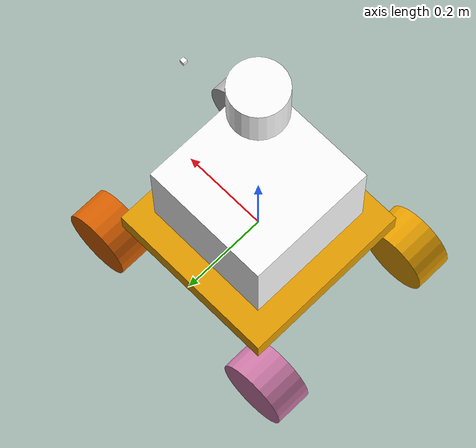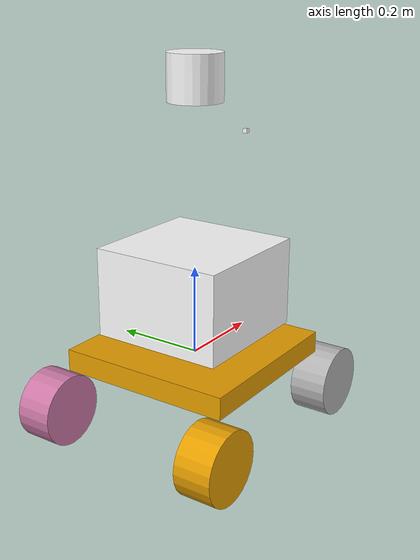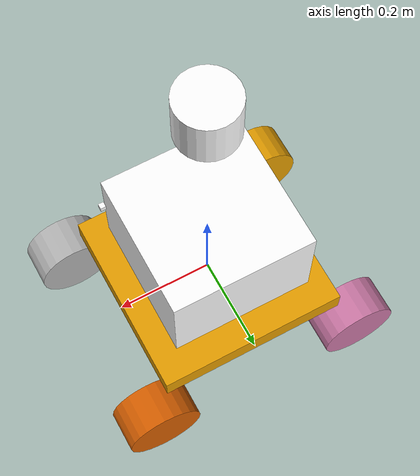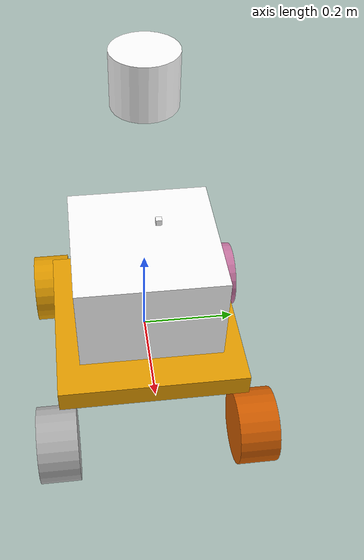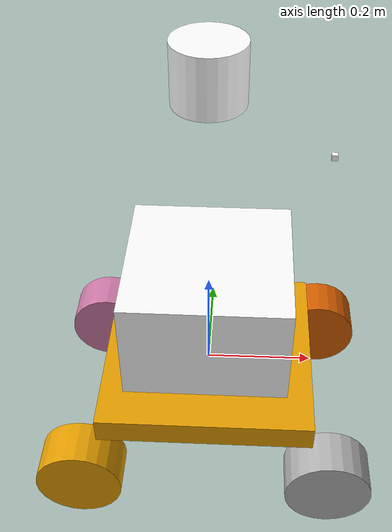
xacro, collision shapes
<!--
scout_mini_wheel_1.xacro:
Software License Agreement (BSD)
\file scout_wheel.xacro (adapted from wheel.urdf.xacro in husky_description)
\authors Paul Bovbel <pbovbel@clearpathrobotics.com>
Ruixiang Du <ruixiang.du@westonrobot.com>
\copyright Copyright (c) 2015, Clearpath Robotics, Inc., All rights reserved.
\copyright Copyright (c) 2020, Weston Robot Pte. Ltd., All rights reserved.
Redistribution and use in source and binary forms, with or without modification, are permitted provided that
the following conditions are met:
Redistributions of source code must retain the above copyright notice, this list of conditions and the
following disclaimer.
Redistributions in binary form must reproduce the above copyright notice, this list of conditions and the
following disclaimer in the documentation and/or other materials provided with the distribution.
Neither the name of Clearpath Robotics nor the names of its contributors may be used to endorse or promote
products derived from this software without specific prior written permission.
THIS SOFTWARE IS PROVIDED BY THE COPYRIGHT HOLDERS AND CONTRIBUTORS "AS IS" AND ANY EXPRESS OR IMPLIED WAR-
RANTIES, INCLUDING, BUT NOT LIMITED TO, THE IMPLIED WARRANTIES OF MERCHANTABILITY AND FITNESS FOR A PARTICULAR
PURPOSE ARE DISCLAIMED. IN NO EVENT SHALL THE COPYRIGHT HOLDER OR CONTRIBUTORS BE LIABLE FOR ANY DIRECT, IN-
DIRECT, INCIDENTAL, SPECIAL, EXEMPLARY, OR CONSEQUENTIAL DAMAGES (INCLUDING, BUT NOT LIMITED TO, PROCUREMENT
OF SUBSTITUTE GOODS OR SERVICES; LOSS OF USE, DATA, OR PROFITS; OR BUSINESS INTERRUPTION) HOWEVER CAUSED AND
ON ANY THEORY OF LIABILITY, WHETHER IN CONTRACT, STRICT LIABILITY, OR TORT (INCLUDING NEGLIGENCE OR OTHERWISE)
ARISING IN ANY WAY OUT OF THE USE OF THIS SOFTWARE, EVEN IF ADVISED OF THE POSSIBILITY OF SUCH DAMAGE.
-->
<?xml version="1.0"?>

<robot name="scout_mini"
    xmlns:xacro="http://ros.org/wiki/xacro">

    <xacro:arg name="ns" default="/" />
    <xacro:arg name="urdf_extras" default="empty.urdf" />
    <xacro:arg name="enable_ros_control" default="false" />
    <xacro:arg name="use_skid_steer_plugin" default="true" />
    <xacro:arg name="robot_description_param" default="robot_description" />
    <xacro:arg name="frame_prefix" default="" />
    <xacro:arg name="sensor_ns" default="/" />
    <xacro:arg name="wheel_contact_mu2" default="0.35" />
    <xacro:arg name="wheel_contact_slip2" default="0.1" />
    <xacro:arg name="skid_steer_torque" default="1000" />

    <xacro:include filename="$(find scout_description)/urdf/scout_mini_wheel_1.xacro" />
    <xacro:include filename="$(find scout_description)/urdf/scout_mini_wheel_2.xacro" />
    <xacro:include filename="$(find scout_description)/urdf/scout_mini_wheel_3.xacro" />
    <xacro:include filename="$(find scout_description)/urdf/scout_mini_wheel_4.xacro" />

    <!-- Variables -->
    <xacro:property name="M_PI" value="3.14159"/>

    <!-- Vehicle Geometries -->
    <xacro:property name="base_x_size" value="0.6200000" />
    <xacro:property name="base_y_size" value="0.585000" />
    <xacro:property name="base_z_size" value="0.235000" />

    <xacro:property name="wheelbase" value="0.463951"/>
    <xacro:property name="track" value="0.416503"/>
    <xacro:property name="wheel_vertical_offset" value="-0.100998" />

    <xacro:property name="wheel_diameter" value="0.16" />
    <xacro:property name="wheel_width" value="0.084" />

    <xacro:property name="wheel_length" value="0.8e-01" />
    <xacro:property name="wheel_radius" value="1.600e-01" />

    <!-- Base link -->
    <link name="base_link">
        <inertial>
            <origin
                xyz="0.0 0.0 0.0"
                rpy="0 0 0" />
            <mass
                value="10" />
            <inertia ixx="0.1354" ixy="0" ixz="0"
             iyy="0.1354" iyz="0" izz="0.2667"/>
        </inertial>
        <visual>
            <origin
                    xyz="0 0 0.0"
                    rpy="1.57 0 -1.57" />
            <geometry>
                <mesh filename="package://scout_description/meshes/scout_mini_base_link2.dae" />
            </geometry>
        </visual>
        <collision>
            <origin
                    xyz="0 0 0"
                    rpy="0 0 0" />
          <geometry>
              <box size="0.4 0.4 0.05"/>
          </geometry>
        </collision>
    </link>

    <link name="box_link">
        <inertial>
            <origin
                xyz="0.0 0.0 0.0"
                rpy="0 0 0" />
            <mass
                value="5" />
            <inertia
                ixx="0.054166666667"
                ixy="0"
                ixz="0"
                iyy="0.075"
                iyz="0"
                izz="0.054166666667"/>
            </inertial>
        <visual>
            <origin
                    xyz="0.0 0.0 0.0"
                    rpy="0.0 0.0 3.14" />
            <geometry>
                <mesh filename="package://scout_description/meshes/box_link.STL" />
            </geometry>
            <material name = "red">
            <color rgba="1 1 1 1" />
            </material>
        </visual>
        <collision>
            <origin
                    xyz="0 0 0.1"
                    rpy="1.57 0 1.57" />
          <geometry>
            <box size="0.3 0.2 0.3"/>
          </geometry>
        </collision>
    </link>

    <joint name="box_joint" type="fixed">
        <origin xyz="0 0 0.055" rpy="0 0 3.14" />
        <parent link="base_link" />
        <child link="box_link" />
    </joint>

 <link name="laser_link">
        <inertial>
            <origin
                xyz="0.0 0.0 0.0"
                rpy="0 0 0" />
            <mass
                value="0.1" />
            <inertia
                ixx="0.0088463"
                ixy="2.0356E-05"
                ixz="-0.00047464"
                iyy="0.0066478"
                iyz="-6.9288E-06"
                izz="0.01219" />
        </inertial>
        <visual>
            <origin
                    xyz="0.0 0.0 0.0"
                    rpy="0.0 0.0 0.0" />
            <geometry>
                    <cylinder radius="0.01" length="0.01"/>
            </geometry>
            <material name = "red">
            <color rgba="1 1 1 1" />
            </material>
        </visual>
        <collision>
            <origin
                    xyz="0 0 0.31"
                    rpy="0 0 0" />
          <geometry>
                    <cylinder radius="0.06" length="0.1"/>
          </geometry>
        </collision>
    </link>

    <joint name="laser_joint" type="fixed">
        <origin xyz="0 0 0.30" rpy="0 0 0" />
        <parent link="base_link" />
        <child link="laser_link" />
    </joint>

 <link name="camera_link">
        <inertial>
            <origin
                xyz="0.0 0.0 0.0"
                rpy="0 0 0" />
            <mass
                value="0.1" />
            <inertia
                ixx="0.0088463"
                ixy="2.0356E-05"
                ixz="-0.00047464"
                iyy="0.0066478"
                iyz="-6.9288E-06"
                izz="0.01219" />
        </inertial>
        <visual>
            <origin
                    xyz="0.0 0.0 0.0"
                    rpy="0.0 0.0 0.0" />
            <geometry>
                    <box size="0.01 0.01 0.01"/>
            </geometry>
            <material name = "red">
            <color rgba="1 1 1 1" />
            </material>
        </visual>
        <collision>
            <origin
                    xyz="0 0 0.31"
                    rpy="0 0 0" />
          <geometry>
                    <box size="0.01 0.01 0.01"/>
          </geometry>
        </collision>
    </link>

    <joint name="camera_joint" type="fixed">
        <origin xyz="0.2 0 0.16" rpy="0 0 0" />
        <parent link="base_link" />
        <child link="camera_link" />
    </joint>

    <link name="imu_link">
        <inertial>
            <origin xyz="0.0 0.0 0.0" rpy="0 0 0" />
            <mass value="0.01" />
            <inertia
                ixx="0.000001" ixy="0" ixz="0"
                iyy="0.000001" iyz="0"
                izz="0.000001" />
        </inertial>
        <visual>
            <origin xyz="0.0 0.0 0.0" rpy="0 0 0" />
            <geometry>
                <box size="0.03 0.02 0.01"/>
            </geometry>
            <material name="imu_blue">
                <color rgba="0.1 0.2 0.8 1.0" />
            </material>
        </visual>
        <collision>
            <origin xyz="0.0 0.0 0.0" rpy="0 0 0" />
            <geometry>
                <box size="0.03 0.02 0.01"/>
            </geometry>
        </collision>
    </link>

    <joint name="imu_joint" type="fixed">
        <origin xyz="0.0 0.0 0.12" rpy="0 0 0" />
        <parent link="base_link" />
        <child link="imu_link" />
    </joint>

    <!-- For testing, hang the robot up in the air -->

    <!-- Scout wheel macros -->
    <!-- wheel labeled from 0 to 3, conter-clockwise, starting from front right wheel -->
    <!-- motor 1 and 2 (left side) are mechanically installed in a reversed direction -->
    <xacro:scout_mini_wheel_1 wheel_prefix="front_left" wheel_diameter="${wheel_diameter}" wheel_width="${wheel_width}">
        <origin xyz="${wheelbase/2} ${track/2} ${wheel_vertical_offset}" rpy="-1.57 0 0" />
    </xacro:scout_mini_wheel_1>
    <xacro:scout_mini_wheel_2 wheel_prefix="rear_left" wheel_diameter="${wheel_diameter}" wheel_width="${wheel_width}">
        <origin xyz="${-wheelbase/2} ${track/2} ${wheel_vertical_offset}" rpy="-1.57 0 0" />
    </xacro:scout_mini_wheel_2>
    <xacro:scout_mini_wheel_3 wheel_prefix="front_right" wheel_diameter="${wheel_diameter}" wheel_width="${wheel_width}">
        <origin xyz="${wheelbase/2} ${-track/2} ${wheel_vertical_offset}" rpy="1.57 0 0" />
    </xacro:scout_mini_wheel_3>
    <xacro:scout_mini_wheel_4 wheel_prefix="rear_right" wheel_diameter="${wheel_diameter}" wheel_width="${wheel_width}">
        <origin xyz="${-wheelbase/2} ${-track/2} ${wheel_vertical_offset}" rpy="1.57 0 0" />
    </xacro:scout_mini_wheel_4>

    <!-- Additional definitions -->
    <xacro:include filename="$(arg urdf_extras)" />

    <!-- Gazebo definitions  -->
    <xacro:include filename="$(find scout_description)/urdf/scout_mini.gazebo" />
</robot>

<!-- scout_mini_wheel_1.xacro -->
<robot xmlns:xacro="http://ros.org/wiki/xacro" name="scout_wheel">

  <xacro:macro name="scout_mini_wheel_1" params="wheel_prefix wheel_diameter wheel_width *joint_pose">
    <xacro:property name="wheel_radius" value="${wheel_diameter / 2}" />
            <link name="${wheel_prefix}_wheel_link">
            <inertial>
                <mass value="3" />
                <origin xyz="0 0 0" />
                <inertia
                    ixx="0.006564" ixy="0" ixz="0"
                    iyy="0.006564" iyz="0"
                    izz="0.0096"/>
              </inertial>
            <visual>
                <origin xyz="0 0 0" rpy="0 0 0" />
                <geometry>
                    <mesh filename="package://scout_description/meshes/wheel.dae" />
                </geometry>
            </visual>
            <collision>
              <origin
                xyz="0 0 0"
                rpy="0 0 0" />
              <geometry>
                  <cylinder radius="0.08" length="0.084"/>

              </geometry>
            </collision>
        </link>

        <joint name="${wheel_prefix}_wheel" type="continuous">
            <parent link="base_link"/>
            <child link="${wheel_prefix}_wheel_link"/>
            <xacro:insert_block name="joint_pose"/>
            <axis xyz="0 0 1" rpy="0 0 0" />
            <dynamics damping="0.1" friction="0.0" />
        </joint>
    </xacro:macro>

</robot>

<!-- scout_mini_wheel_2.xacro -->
<robot xmlns:xacro="http://ros.org/wiki/xacro" name="scout_wheel">

  <xacro:macro name="scout_mini_wheel_2" params="wheel_prefix wheel_diameter wheel_width *joint_pose">
    <xacro:property name="wheel_radius" value="${wheel_diameter / 2}" />
           <link name="${wheel_prefix}_wheel_link">
            <inertial>
                <mass value="3" />
                <origin xyz="0 0 0" />
                <inertia
                    ixx="0.006564" ixy="0" ixz="0"
                    iyy="0.006564" iyz="0"
                    izz="0.0096"/>
              </inertial>
            <visual>
                <origin xyz="0 0 0" rpy="0 0 0" />
                <geometry>
                    <mesh filename="package://scout_description/meshes/wheel.dae" />
                </geometry>
            </visual>
            <collision>
              <origin
                xyz="0 0 0"
                rpy="0 0 0" />
              <geometry>
                  <cylinder radius="0.08" length="0.084"/>
              </geometry>
            </collision>
        </link>

        <joint name="${wheel_prefix}_wheel" type="continuous">
            <parent link="base_link"/>
            <child link="${wheel_prefix}_wheel_link"/>
            <xacro:insert_block name="joint_pose"/>
            <axis xyz="0 0 1" rpy="0 0 0" />
            <dynamics damping="0.1" friction="0.0" />
        </joint>
    </xacro:macro>

</robot>

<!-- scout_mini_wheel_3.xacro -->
<robot xmlns:xacro="http://ros.org/wiki/xacro" name="scout_wheel">

  <xacro:macro name="scout_mini_wheel_3" params="wheel_prefix wheel_diameter wheel_width *joint_pose">
    <xacro:property name="wheel_radius" value="${wheel_diameter / 2}" />
            <link name="${wheel_prefix}_wheel_link">
            <inertial>
                <mass value="3" />
                <origin xyz="0 0 0" />
                <inertia
                    ixx="0.006564" ixy="0" ixz="0"
                    iyy="0.006564" iyz="0"
                    izz="0.0096"/>
              </inertial>

            <visual>
                <origin xyz="0 0 0" rpy="0 0 0" />
                <geometry>
                    <mesh filename="package://scout_description/meshes/wheel.dae" />
                </geometry>
            </visual>
            <collision>
              <origin
                xyz="0 0 0"
                rpy="0 0 0" />
              <geometry>
                  <cylinder radius="0.08" length="0.084"/>

              </geometry>
            </collision>
        </link>

        <joint name="${wheel_prefix}_wheel" type="continuous">
            <parent link="base_link"/>
            <child link="${wheel_prefix}_wheel_link"/>
            <xacro:insert_block name="joint_pose"/>
            <axis xyz="0 0 -1" rpy="0 0 0" />
            <dynamics damping="0.1" friction="0.0" />
        </joint>
    </xacro:macro>

</robot>

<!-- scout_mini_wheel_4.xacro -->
<robot xmlns:xacro="http://ros.org/wiki/xacro" name="scout_wheel">

  <xacro:macro name="scout_mini_wheel_4" params="wheel_prefix wheel_diameter wheel_width *joint_pose">
    <xacro:property name="wheel_radius" value="${wheel_diameter / 2}" />
        <link name="${wheel_prefix}_wheel_link">
        <inertial>
            <mass value="3" />
            <origin xyz="0 0 0" />
                <inertia
                    ixx="0.006564" ixy="0" ixz="0"
                    iyy="0.006564" iyz="0"
                    izz="0.0096"/>
              </inertial>
        <visual>
            <origin xyz="0 0 0" rpy="0 0 0" />
            <geometry>
                <mesh filename="package://scout_description/meshes/wheel.dae" />
            </geometry>
        </visual>
            <collision>
              <origin
                xyz="0 0 0"
                rpy="0 0 0" />
              <geometry>
                  <cylinder radius="0.08" length="0.084"/>

              </geometry>
            </collision>
        </link>

        <joint name="${wheel_prefix}_wheel" type="continuous">
            <parent link="base_link"/>
            <child link="${wheel_prefix}_wheel_link"/>
            <xacro:insert_block name="joint_pose"/>
            <axis xyz="0 0 -1" rpy="0 0 0" />
            <dynamics damping="0.1" friction="0.0" />
        </joint>
    </xacro:macro>

</robot>
